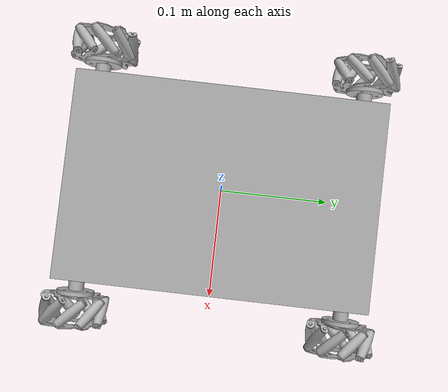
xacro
<?xml version="1.0" ?>
<robot name="agv_mobile_robot_final" xmlns:xacro="http://www.ros.org/wiki/xacro">

<xacro:include filename="$(find agv_mobile_robot_final_description)/urdf/materials.xacro" />
<xacro:include filename="$(find agv_mobile_robot_final_description)/urdf/agv_mobile_robot_final.trans" />
<xacro:include filename="$(find agv_mobile_robot_final_description)/urdf/agv_mobile_robot_final.gazebo" />
<link name="base_link">
  <inertial>
    <origin xyz="-2.7546177114513862e-17 -3.801372441802913e-15 0.00045622939978561634" rpy="0 0 0"/>
    <mass value="2.591841829534931"/>
    <inertia ixx="0.021843" iyy="0.010247" izz="0.0318" ixy="0.0" iyz="-0.0" ixz="-0.0"/>
  </inertial>
  <visual>
    <origin xyz="0 0 0" rpy="0 0 0"/>
    <geometry>
      <mesh filename="package://agv_mobile_robot_final_description/meshes/base_link.stl" scale="0.001 0.001 0.001"/>
    </geometry>
    <material name="silver"/>
  </visual>
  <collision>
    <origin xyz="0 0 0" rpy="0 0 0"/>
    <geometry>
      <mesh filename="package://agv_mobile_robot_final_description/meshes/base_link.stl" scale="0.001 0.001 0.001"/>
    </geometry>
  </collision>
</link>

<link name="actuator_1_2">
  <inertial>
    <origin xyz="-0.031709200865510156 -3.5293434841321414e-11 -3.480758367264969e-07" rpy="0 0 0"/>
    <mass value="0.2958780075293276"/>
    <inertia ixx="2.9e-05" iyy="0.000114" izz="0.000114" ixy="-0.0" iyz="0.0" ixz="0.0"/>
  </inertial>
  <visual>
    <origin xyz="-0.095 0.13 0.02" rpy="0 0 0"/>
    <geometry>
      <mesh filename="package://agv_mobile_robot_final_description/meshes/actuator_1_2.stl" scale="0.001 0.001 0.001"/>
    </geometry>
    <material name="silver"/>
  </visual>
  <collision>
    <origin xyz="-0.095 0.13 0.02" rpy="0 0 0"/>
    <geometry>
      <mesh filename="package://agv_mobile_robot_final_description/meshes/actuator_1_2.stl" scale="0.001 0.001 0.001"/>
    </geometry>
  </collision>
</link>

<link name="right_mechanum_flange_1">
  <inertial>
    <origin xyz="-0.0009351558019387168 -5.972138533982818e-07 -1.0982476493295867e-06" rpy="0 0 0"/>
    <mass value="0.017585048067516238"/>
    <inertia ixx="9e-06" iyy="4e-06" izz="4e-06" ixy="0.0" iyz="-0.0" ixz="0.0"/>
  </inertial>
  <visual>
    <origin xyz="0.1155 0.13 0.02" rpy="0 0 0"/>
    <geometry>
      <mesh filename="package://agv_mobile_robot_final_description/meshes/right_mechanum_flange_1.stl" scale="0.001 0.001 0.001"/>
    </geometry>
    <material name="silver"/>
  </visual>
  <collision>
    <origin xyz="0.1155 0.13 0.02" rpy="0 0 0"/>
    <geometry>
      <mesh filename="package://agv_mobile_robot_final_description/meshes/right_mechanum_flange_1.stl" scale="0.001 0.001 0.001"/>
    </geometry>
  </collision>
</link>

<link name="actuator_1_4">
  <inertial>
    <origin xyz="0.031709200865510184 3.5293240552292104e-11 -3.480758367264969e-07" rpy="0 0 0"/>
    <mass value="0.2958780075293276"/>
    <inertia ixx="2.9e-05" iyy="0.000114" izz="0.000114" ixy="-0.0" iyz="-0.0" ixz="-0.0"/>
  </inertial>
  <visual>
    <origin xyz="0.095 -0.13 0.02" rpy="0 0 0"/>
    <geometry>
      <mesh filename="package://agv_mobile_robot_final_description/meshes/actuator_1_4.stl" scale="0.001 0.001 0.001"/>
    </geometry>
    <material name="silver"/>
  </visual>
  <collision>
    <origin xyz="0.095 -0.13 0.02" rpy="0 0 0"/>
    <geometry>
      <mesh filename="package://agv_mobile_robot_final_description/meshes/actuator_1_4.stl" scale="0.001 0.001 0.001"/>
    </geometry>
  </collision>
</link>

<link name="actuator_1_1">
  <inertial>
    <origin xyz="-0.031709200865510184 -3.5293490352472645e-11 -3.480758367126191e-07" rpy="0 0 0"/>
    <mass value="0.2958780075293276"/>
    <inertia ixx="2.9e-05" iyy="0.000114" izz="0.000114" ixy="-0.0" iyz="0.0" ixz="0.0"/>
  </inertial>
  <visual>
    <origin xyz="-0.095 -0.13 0.02" rpy="0 0 0"/>
    <geometry>
      <mesh filename="package://agv_mobile_robot_final_description/meshes/actuator_1_1.stl" scale="0.001 0.001 0.001"/>
    </geometry>
    <material name="silver"/>
  </visual>
  <collision>
    <origin xyz="-0.095 -0.13 0.02" rpy="0 0 0"/>
    <geometry>
      <mesh filename="package://agv_mobile_robot_final_description/meshes/actuator_1_1.stl" scale="0.001 0.001 0.001"/>
    </geometry>
  </collision>
</link>

<link name="motor_shaft_coupling_1">
  <inertial>
    <origin xyz="-0.0009334173338682861 -9.303668946358812e-14 -5.718342466209947e-14" rpy="0 0 0"/>
    <mass value="0.04364666666990693"/>
    <inertia ixx="5e-06" iyy="3e-06" izz="3e-06" ixy="-0.0" iyz="0.0" ixz="-0.0"/>
  </inertial>
  <visual>
    <origin xyz="0.1105 0.13 0.02" rpy="0 0 0"/>
    <geometry>
      <mesh filename="package://agv_mobile_robot_final_description/meshes/motor_shaft_coupling_1.stl" scale="0.001 0.001 0.001"/>
    </geometry>
    <material name="silver"/>
  </visual>
  <collision>
    <origin xyz="0.1105 0.13 0.02" rpy="0 0 0"/>
    <geometry>
      <mesh filename="package://agv_mobile_robot_final_description/meshes/motor_shaft_coupling_1.stl" scale="0.001 0.001 0.001"/>
    </geometry>
  </collision>
</link>

<link name="right_mechanum_flange_2">
  <inertial>
    <origin xyz="-0.000935155801938703 0.2599993013269878 -0.00025103666209940964" rpy="0 0 0"/>
    <mass value="0.017585048067516238"/>
    <inertia ixx="9e-06" iyy="4e-06" izz="4e-06" ixy="0.0" iyz="-0.0" ixz="0.0"/>
  </inertial>
  <visual>
    <origin xyz="0.1155 0.13 0.02" rpy="0 0 0"/>
    <geometry>
      <mesh filename="package://agv_mobile_robot_final_description/meshes/right_mechanum_flange_2.stl" scale="0.001 0.001 0.001"/>
    </geometry>
    <material name="silver"/>
  </visual>
  <collision>
    <origin xyz="0.1155 0.13 0.02" rpy="0 0 0"/>
    <geometry>
      <mesh filename="package://agv_mobile_robot_final_description/meshes/right_mechanum_flange_2.stl" scale="0.001 0.001 0.001"/>
    </geometry>
  </collision>
</link>

<link name="right_mechanum_flange_outer_2">
  <inertial>
    <origin xyz="-0.1580648441980613 -0.09591720740424353 -0.06908232401745773" rpy="0 0 0"/>
    <mass value="0.017585048067516266"/>
    <inertia ixx="9e-06" iyy="4e-06" izz="4e-06" ixy="-0.0" iyz="-0.0" ixz="-0.0"/>
  </inertial>
  <visual>
    <origin xyz="-0.0145 -0.225916 -0.048832" rpy="0 0 0"/>
    <geometry>
      <mesh filename="package://agv_mobile_robot_final_description/meshes/right_mechanum_flange_outer_2.stl" scale="0.001 0.001 0.001"/>
    </geometry>
    <material name="silver"/>
  </visual>
  <collision>
    <origin xyz="-0.0145 -0.225916 -0.048832" rpy="0 0 0"/>
    <geometry>
      <mesh filename="package://agv_mobile_robot_final_description/meshes/right_mechanum_flange_outer_2.stl" scale="0.001 0.001 0.001"/>
    </geometry>
  </collision>
</link>

<link name="motor_shaft_coupling_2">
  <inertial>
    <origin xyz="-0.0009334173338682306 -7.466249840604178e-15 -1.0932921234996229e-13" rpy="0 0 0"/>
    <mass value="0.04364666666990693"/>
    <inertia ixx="5e-06" iyy="3e-06" izz="3e-06" ixy="-0.0" iyz="0.0" ixz="-0.0"/>
  </inertial>
  <visual>
    <origin xyz="0.1105 -0.13 0.02025" rpy="0 0 0"/>
    <geometry>
      <mesh filename="package://agv_mobile_robot_final_description/meshes/motor_shaft_coupling_2.stl" scale="0.001 0.001 0.001"/>
    </geometry>
    <material name="silver"/>
  </visual>
  <collision>
    <origin xyz="0.1105 -0.13 0.02025" rpy="0 0 0"/>
    <geometry>
      <mesh filename="package://agv_mobile_robot_final_description/meshes/motor_shaft_coupling_2.stl" scale="0.001 0.001 0.001"/>
    </geometry>
  </collision>
</link>

<link name="motor_shaft_coupling__1__1">
  <inertial>
    <origin xyz="0.0009334173338682306 -2.4119595209981526e-14 1.0696304952872993e-13" rpy="0 0 0"/>
    <mass value="0.04364666666990693"/>
    <inertia ixx="5e-06" iyy="3e-06" izz="3e-06" ixy="0.0" iyz="-0.0" ixz="-0.0"/>
  </inertial>
  <visual>
    <origin xyz="-0.1105 0.13 0.02" rpy="0 0 0"/>
    <geometry>
      <mesh filename="package://agv_mobile_robot_final_description/meshes/motor_shaft_coupling__1__1.stl" scale="0.001 0.001 0.001"/>
    </geometry>
    <material name="silver"/>
  </visual>
  <collision>
    <origin xyz="-0.1105 0.13 0.02" rpy="0 0 0"/>
    <geometry>
      <mesh filename="package://agv_mobile_robot_final_description/meshes/motor_shaft_coupling__1__1.stl" scale="0.001 0.001 0.001"/>
    </geometry>
  </collision>
</link>

<link name="left_mechanum_flange_2">
  <inertial>
    <origin xyz="-0.10293515580193846 0.13118284959091983 -0.061511917064640605" rpy="0 0 0"/>
    <mass value="0.01758504806751607"/>
    <inertia ixx="9e-06" iyy="4e-06" izz="4e-06" ixy="-0.0" iyz="0.0" ixz="0.0"/>
  </inertial>
  <visual>
    <origin xyz="-0.2465 0.001182 -0.039511" rpy="0 0 0"/>
    <geometry>
      <mesh filename="package://agv_mobile_robot_final_description/meshes/left_mechanum_flange_2.stl" scale="0.001 0.001 0.001"/>
    </geometry>
    <material name="silver"/>
  </visual>
  <collision>
    <origin xyz="-0.2465 0.001182 -0.039511" rpy="0 0 0"/>
    <geometry>
      <mesh filename="package://agv_mobile_robot_final_description/meshes/left_mechanum_flange_2.stl" scale="0.001 0.001 0.001"/>
    </geometry>
  </collision>
</link>

<link name="omni_wheel__2__2">
  <inertial>
    <origin xyz="0.12158111144256818 -0.11083899999996086 0.04376500000000752" rpy="0 0 0"/>
    <mass value="0.12323766996512543"/>
    <inertia ixx="9.8e-05" iyy="5.5e-05" izz="5.5e-05" ixy="0.0" iyz="0.0" ixz="0.0"/>
  </inertial>
  <visual>
    <origin xyz="-0.008425 -0.240839 0.065765" rpy="0 0 0"/>
    <geometry>
      <mesh filename="package://agv_mobile_robot_final_description/meshes/omni_wheel__2__2.stl" scale="0.001 0.001 0.001"/>
    </geometry>
    <material name="silver"/>
  </visual>
  <collision>
    <origin xyz="-0.008425 -0.240839 0.065765" rpy="0 0 0"/>
    <geometry>
      <mesh filename="package://agv_mobile_robot_final_description/meshes/omni_wheel__2__2.stl" scale="0.001 0.001 0.001"/>
    </geometry>
  </collision>
</link>

<link name="left_mechanum_flange_outer_2">
  <inertial>
    <origin xyz="-0.019064844198061287 -0.11452921899890148 0.13085672277446214" rpy="0 0 0"/>
    <mass value="0.017585048067516058"/>
    <inertia ixx="9e-06" iyy="4e-06" izz="4e-06" ixy="-0.0" iyz="-0.0" ixz="-0.0"/>
  </inertial>
  <visual>
    <origin xyz="-0.1355 -0.244528 0.152857" rpy="0 0 0"/>
    <geometry>
      <mesh filename="package://agv_mobile_robot_final_description/meshes/left_mechanum_flange_outer_2.stl" scale="0.001 0.001 0.001"/>
    </geometry>
    <material name="silver"/>
  </visual>
  <collision>
    <origin xyz="-0.1355 -0.244528 0.152857" rpy="0 0 0"/>
    <geometry>
      <mesh filename="package://agv_mobile_robot_final_description/meshes/left_mechanum_flange_outer_2.stl" scale="0.001 0.001 0.001"/>
    </geometry>
  </collision>
</link>

<link name="motor_shaft_coupling__1__2">
  <inertial>
    <origin xyz="0.0009334173338682306 -1.3711254354120683e-14 -1.087151202394665e-13" rpy="0 0 0"/>
    <mass value="0.04364666666990693"/>
    <inertia ixx="5e-06" iyy="3e-06" izz="3e-06" ixy="0.0" iyz="0.0" ixz="0.0"/>
  </inertial>
  <visual>
    <origin xyz="-0.1105 -0.13 0.022" rpy="0 0 0"/>
    <geometry>
      <mesh filename="package://agv_mobile_robot_final_description/meshes/motor_shaft_coupling__1__2.stl" scale="0.001 0.001 0.001"/>
    </geometry>
    <material name="silver"/>
  </visual>
  <collision>
    <origin xyz="-0.1105 -0.13 0.022" rpy="0 0 0"/>
    <geometry>
      <mesh filename="package://agv_mobile_robot_final_description/meshes/motor_shaft_coupling__1__2.stl" scale="0.001 0.001 0.001"/>
    </geometry>
  </collision>
</link>

<link name="omni_wheel__1__1">
  <inertial>
    <origin xyz="-0.16751588855744268 -0.08991100000000052 -0.08667399999998718" rpy="0 0 0"/>
    <mass value="0.12323766996513003"/>
    <inertia ixx="9.8e-05" iyy="5.5e-05" izz="5.5e-05" ixy="0.0" iyz="0.0" ixz="0.0"/>
  </inertial>
  <visual>
    <origin xyz="-0.037522 -0.219911 -0.066424" rpy="0 0 0"/>
    <geometry>
      <mesh filename="package://agv_mobile_robot_final_description/meshes/omni_wheel__1__1.stl" scale="0.001 0.001 0.001"/>
    </geometry>
    <material name="silver"/>
  </visual>
  <collision>
    <origin xyz="-0.037522 -0.219911 -0.066424" rpy="0 0 0"/>
    <geometry>
      <mesh filename="package://agv_mobile_robot_final_description/meshes/omni_wheel__1__1.stl" scale="0.001 0.001 0.001"/>
    </geometry>
  </collision>
</link>

<link name="actuator_1_3">
  <inertial>
    <origin xyz="0.031709200865510254 3.529274095193102e-11 -3.480758367264969e-07" rpy="0 0 0"/>
    <mass value="0.2958780075293276"/>
    <inertia ixx="2.9e-05" iyy="0.000114" izz="0.000114" ixy="-0.0" iyz="-0.0" ixz="-0.0"/>
  </inertial>
  <visual>
    <origin xyz="0.095 0.13 0.02" rpy="0 0 0"/>
    <geometry>
      <mesh filename="package://agv_mobile_robot_final_description/meshes/actuator_1_3.stl" scale="0.001 0.001 0.001"/>
    </geometry>
    <material name="silver"/>
  </visual>
  <collision>
    <origin xyz="0.095 0.13 0.02" rpy="0 0 0"/>
    <geometry>
      <mesh filename="package://agv_mobile_robot_final_description/meshes/actuator_1_3.stl" scale="0.001 0.001 0.001"/>
    </geometry>
  </collision>
</link>

<link name="omni_wheel_1">
  <inertial>
    <origin xyz="-0.01117188855738778 -0.02748299999998849 0.010716000000000541" rpy="0 0 0"/>
    <mass value="0.1232376699651355"/>
    <inertia ixx="9.8e-05" iyy="5.5e-05" izz="5.5e-05" ixy="0.0" iyz="0.0" ixz="0.0"/>
  </inertial>
  <visual>
    <origin xyz="0.118822 0.102517 0.030716" rpy="0 0 0"/>
    <geometry>
      <mesh filename="package://agv_mobile_robot_final_description/meshes/omni_wheel_1.stl" scale="0.001 0.001 0.001"/>
    </geometry>
    <material name="silver"/>
  </visual>
  <collision>
    <origin xyz="0.118822 0.102517 0.030716" rpy="0 0 0"/>
    <geometry>
      <mesh filename="package://agv_mobile_robot_final_description/meshes/omni_wheel_1.stl" scale="0.001 0.001 0.001"/>
    </geometry>
  </collision>
</link>

<link name="right_mechanum_flange_outer_1">
  <inertial>
    <origin xyz="-0.1580648441980617 -0.08893317815448579 -0.07786658195176588" rpy="0 0 0"/>
    <mass value="0.017585048067516266"/>
    <inertia ixx="9e-06" iyy="4e-06" izz="4e-06" ixy="-0.0" iyz="0.0" ixz="0.0"/>
  </inertial>
  <visual>
    <origin xyz="-0.0145 0.041068 -0.057867" rpy="0 0 0"/>
    <geometry>
      <mesh filename="package://agv_mobile_robot_final_description/meshes/right_mechanum_flange_outer_1.stl" scale="0.001 0.001 0.001"/>
    </geometry>
    <material name="silver"/>
  </visual>
  <collision>
    <origin xyz="-0.0145 0.041068 -0.057867" rpy="0 0 0"/>
    <geometry>
      <mesh filename="package://agv_mobile_robot_final_description/meshes/right_mechanum_flange_outer_1.stl" scale="0.001 0.001 0.001"/>
    </geometry>
  </collision>
</link>

<link name="left_mechanum_flange_1">
  <inertial>
    <origin xyz="0.0009351558019387307 9.191495288773943e-07 8.473348981734297e-07" rpy="0 0 0"/>
    <mass value="0.01758504806751607"/>
    <inertia ixx="9e-06" iyy="4e-06" izz="4e-06" ixy="0.0" iyz="-0.0" ixz="0.0"/>
  </inertial>
  <visual>
    <origin xyz="-0.1155 0.13 0.02" rpy="0 0 0"/>
    <geometry>
      <mesh filename="package://agv_mobile_robot_final_description/meshes/left_mechanum_flange_1.stl" scale="0.001 0.001 0.001"/>
    </geometry>
    <material name="silver"/>
  </visual>
  <collision>
    <origin xyz="-0.1155 0.13 0.02" rpy="0 0 0"/>
    <geometry>
      <mesh filename="package://agv_mobile_robot_final_description/meshes/left_mechanum_flange_1.stl" scale="0.001 0.001 0.001"/>
    </geometry>
  </collision>
</link>

<link name="omni_wheel__3__1">
  <inertial>
    <origin xyz="0.01117188855748917 0.02256600000001263 -0.01899799999999511" rpy="0 0 0"/>
    <mass value="0.12323766996513107"/>
    <inertia ixx="9.8e-05" iyy="5.5e-05" izz="5.5e-05" ixy="0.0" iyz="0.0" ixz="0.0"/>
  </inertial>
  <visual>
    <origin xyz="-0.118822 0.152566 0.001002" rpy="0 0 0"/>
    <geometry>
      <mesh filename="package://agv_mobile_robot_final_description/meshes/omni_wheel__3__1.stl" scale="0.001 0.001 0.001"/>
    </geometry>
    <material name="silver"/>
  </visual>
  <collision>
    <origin xyz="-0.118822 0.152566 0.001002" rpy="0 0 0"/>
    <geometry>
      <mesh filename="package://agv_mobile_robot_final_description/meshes/omni_wheel__3__1.stl" scale="0.001 0.001 0.001"/>
    </geometry>
  </collision>
</link>

<link name="left_mechanum_flange_outer_1">
  <inertial>
    <origin xyz="-0.10293515580193852 -0.11805118671139976 -0.0060436068990274774" rpy="0 0 0"/>
    <mass value="0.017585048067516058"/>
    <inertia ixx="9e-06" iyy="4e-06" izz="4e-06" ixy="0.0" iyz="0.0" ixz="-0.0"/>
  </inertial>
  <visual>
    <origin xyz="-0.2465 0.01195 0.013956" rpy="0 0 0"/>
    <geometry>
      <mesh filename="package://agv_mobile_robot_final_description/meshes/left_mechanum_flange_outer_1.stl" scale="0.001 0.001 0.001"/>
    </geometry>
    <material name="silver"/>
  </visual>
  <collision>
    <origin xyz="-0.2465 0.01195 0.013956" rpy="0 0 0"/>
    <geometry>
      <mesh filename="package://agv_mobile_robot_final_description/meshes/left_mechanum_flange_outer_1.stl" scale="0.001 0.001 0.001"/>
    </geometry>
  </collision>
</link>

<joint name="Rigid 2" type="fixed">
  <origin xyz="0.095 -0.13 -0.02" rpy="0 0 0"/>
  <parent link="base_link"/>
  <child link="actuator_1_2"/>
</joint>

<joint name="Rigid 3" type="fixed">
  <origin xyz="-0.005 0.0 0.0" rpy="0 0 0"/>
  <parent link="motor_shaft_coupling_1"/>
  <child link="right_mechanum_flange_1"/>
</joint>

<joint name="Rigid 4" type="fixed">
  <origin xyz="-0.095 0.13 -0.02" rpy="0 0 0"/>
  <parent link="base_link"/>
  <child link="actuator_1_4"/>
</joint>

<joint name="Rigid 5" type="fixed">
  <origin xyz="0.095 0.13 -0.02" rpy="0 0 0"/>
  <parent link="base_link"/>
  <child link="actuator_1_1"/>
</joint>

<joint name="Revolute 10" type="continuous">
  <origin xyz="-0.0155 0.0 0.0" rpy="0 0 0"/>
  <parent link="actuator_1_3"/>
  <child link="motor_shaft_coupling_1"/>
  <axis xyz="-1.0 0.0 -0.0"/>
</joint>

<joint name="Rigid 11" type="fixed">
  <origin xyz="-0.005 -0.26 0.00025" rpy="0 0 0"/>
  <parent link="motor_shaft_coupling_2"/>
  <child link="right_mechanum_flange_2"/>
</joint>

<joint name="Rigid 15" type="fixed">
  <origin xyz="0.13 0.355916 0.068832" rpy="0 0 0"/>
  <parent link="right_mechanum_flange_2"/>
  <child link="right_mechanum_flange_outer_2"/>
</joint>

<joint name="Revolute 17" type="continuous">
  <origin xyz="-0.0155 0.0 -0.00025" rpy="0 0 0"/>
  <parent link="actuator_1_4"/>
  <child link="motor_shaft_coupling_2"/>
  <axis xyz="-1.0 0.0 -0.0"/>
</joint>

<joint name="Revolute 23" type="continuous">
  <origin xyz="0.0155 0.0 0.0" rpy="0 0 0"/>
  <parent link="actuator_1_2"/>
  <child link="motor_shaft_coupling__1__1"/>
  <axis xyz="1.0 0.0 -0.0"/>
</joint>

<joint name="Rigid 24" type="fixed">
  <origin xyz="0.111 -0.24571 0.192368" rpy="0 0 0"/>
  <parent link="left_mechanum_flange_outer_2"/>
  <child link="left_mechanum_flange_2"/>
</joint>

<joint name="Rigid 25" type="fixed">
  <origin xyz="-0.238075 0.242021 -0.105276" rpy="0 0 0"/>
  <parent link="left_mechanum_flange_2"/>
  <child link="omni_wheel__2__2"/>
</joint>

<joint name="Rigid 26" type="fixed">
  <origin xyz="0.025 0.114528 -0.130857" rpy="0 0 0"/>
  <parent link="motor_shaft_coupling__1__2"/>
  <child link="left_mechanum_flange_outer_2"/>
</joint>

<joint name="Revolute 28" type="continuous">
  <origin xyz="0.0155 0.0 -0.002" rpy="0 0 0"/>
  <parent link="actuator_1_1"/>
  <child link="motor_shaft_coupling__1__2"/>
  <axis xyz="1.0 0.0 0.0"/>
</joint>

<joint name="Rigid 30" type="fixed">
  <origin xyz="0.153022 0.349911 0.086424" rpy="0 0 0"/>
  <parent link="right_mechanum_flange_2"/>
  <child link="omni_wheel__1__1"/>
</joint>

<joint name="Rigid 31" type="fixed">
  <origin xyz="-0.095 -0.13 -0.02" rpy="0 0 0"/>
  <parent link="base_link"/>
  <child link="actuator_1_3"/>
</joint>

<joint name="Rigid 32" type="fixed">
  <origin xyz="-0.003322 0.027483 -0.010716" rpy="0 0 0"/>
  <parent link="right_mechanum_flange_1"/>
  <child link="omni_wheel_1"/>
</joint>

<joint name="Rigid 33" type="fixed">
  <origin xyz="0.13 0.088932 0.077867" rpy="0 0 0"/>
  <parent link="right_mechanum_flange_1"/>
  <child link="right_mechanum_flange_outer_1"/>
</joint>

<joint name="Rigid 34" type="fixed">
  <origin xyz="0.005 0.0 0.0" rpy="0 0 0"/>
  <parent link="motor_shaft_coupling__1__1"/>
  <child link="left_mechanum_flange_1"/>
</joint>

<joint name="Rigid 35" type="fixed">
  <origin xyz="0.003322 -0.022566 0.018998" rpy="0 0 0"/>
  <parent link="left_mechanum_flange_1"/>
  <child link="omni_wheel__3__1"/>
</joint>

<joint name="Rigid 36" type="fixed">
  <origin xyz="0.131 0.11805 0.006044" rpy="0 0 0"/>
  <parent link="left_mechanum_flange_1"/>
  <child link="left_mechanum_flange_outer_1"/>
</joint>

</robot>

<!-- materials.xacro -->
<robot name="agv_mobile_robot_final" xmlns:xacro="http://www.ros.org/wiki/xacro" >

<material name="silver">
  <color rgba="0.700 0.700 0.700 1.000"/>
</material>

</robot>

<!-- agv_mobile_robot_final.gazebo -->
<robot name="agv_mobile_robot_final" xmlns:xacro="http://www.ros.org/wiki/xacro" >

<xacro:property name="body_color" value="Gazebo/Silver" />

<gazebo>
  <plugin name="control" filename="libgazebo_ros_control.so"/>
</gazebo>
<gazebo reference="base_link">
  <material>${body_color}</material>
  <mu1>0.2</mu1>
  <mu2>0.2</mu2>
  <selfCollide>true</selfCollide>
  <gravity>true</gravity>
</gazebo>

<gazebo reference="actuator_1_2">
  <material>${body_color}</material>
  <mu1>0.2</mu1>
  <mu2>0.2</mu2>
  <selfCollide>true</selfCollide>
</gazebo>

<gazebo reference="right_mechanum_flange_1">
  <material>${body_color}</material>
  <mu1>0.2</mu1>
  <mu2>0.2</mu2>
  <selfCollide>true</selfCollide>
</gazebo>

<gazebo reference="actuator_1_4">
  <material>${body_color}</material>
  <mu1>0.2</mu1>
  <mu2>0.2</mu2>
  <selfCollide>true</selfCollide>
</gazebo>

<gazebo reference="actuator_1_1">
  <material>${body_color}</material>
  <mu1>0.2</mu1>
  <mu2>0.2</mu2>
  <selfCollide>true</selfCollide>
</gazebo>

<gazebo reference="motor_shaft_coupling_1">
  <material>${body_color}</material>
  <mu1>0.2</mu1>
  <mu2>0.2</mu2>
  <selfCollide>true</selfCollide>
</gazebo>

<gazebo reference="right_mechanum_flange_2">
  <material>${body_color}</material>
  <mu1>0.2</mu1>
  <mu2>0.2</mu2>
  <selfCollide>true</selfCollide>
</gazebo>

<gazebo reference="right_mechanum_flange_outer_2">
  <material>${body_color}</material>
  <mu1>0.2</mu1>
  <mu2>0.2</mu2>
  <selfCollide>true</selfCollide>
</gazebo>

<gazebo reference="motor_shaft_coupling_2">
  <material>${body_color}</material>
  <mu1>0.2</mu1>
  <mu2>0.2</mu2>
  <selfCollide>true</selfCollide>
</gazebo>

<gazebo reference="motor_shaft_coupling__1__1">
  <material>${body_color}</material>
  <mu1>0.2</mu1>
  <mu2>0.2</mu2>
  <selfCollide>true</selfCollide>
</gazebo>

<gazebo reference="left_mechanum_flange_2">
  <material>${body_color}</material>
  <mu1>0.2</mu1>
  <mu2>0.2</mu2>
  <selfCollide>true</selfCollide>
</gazebo>

<gazebo reference="omni_wheel__2__2">
  <material>${body_color}</material>
  <mu1>0.2</mu1>
  <mu2>0.2</mu2>
  <selfCollide>true</selfCollide>
</gazebo>

<gazebo reference="left_mechanum_flange_outer_2">
  <material>${body_color}</material>
  <mu1>0.2</mu1>
  <mu2>0.2</mu2>
  <selfCollide>true</selfCollide>
</gazebo>

<gazebo reference="motor_shaft_coupling__1__2">
  <material>${body_color}</material>
  <mu1>0.2</mu1>
  <mu2>0.2</mu2>
  <selfCollide>true</selfCollide>
</gazebo>

<gazebo reference="omni_wheel__1__1">
  <material>${body_color}</material>
  <mu1>0.2</mu1>
  <mu2>0.2</mu2>
  <selfCollide>true</selfCollide>
</gazebo>

<gazebo reference="actuator_1_3">
  <material>${body_color}</material>
  <mu1>0.2</mu1>
  <mu2>0.2</mu2>
  <selfCollide>true</selfCollide>
</gazebo>

<gazebo reference="omni_wheel_1">
  <material>${body_color}</material>
  <mu1>0.2</mu1>
  <mu2>0.2</mu2>
  <selfCollide>true</selfCollide>
</gazebo>

<gazebo reference="right_mechanum_flange_outer_1">
  <material>${body_color}</material>
  <mu1>0.2</mu1>
  <mu2>0.2</mu2>
  <selfCollide>true</selfCollide>
</gazebo>

<gazebo reference="left_mechanum_flange_1">
  <material>${body_color}</material>
  <mu1>0.2</mu1>
  <mu2>0.2</mu2>
  <selfCollide>true</selfCollide>
</gazebo>

<gazebo reference="omni_wheel__3__1">
  <material>${body_color}</material>
  <mu1>0.2</mu1>
  <mu2>0.2</mu2>
  <selfCollide>true</selfCollide>
</gazebo>

<gazebo reference="left_mechanum_flange_outer_1">
  <material>${body_color}</material>
  <mu1>0.2</mu1>
  <mu2>0.2</mu2>
  <selfCollide>true</selfCollide>
</gazebo>

</robot>
